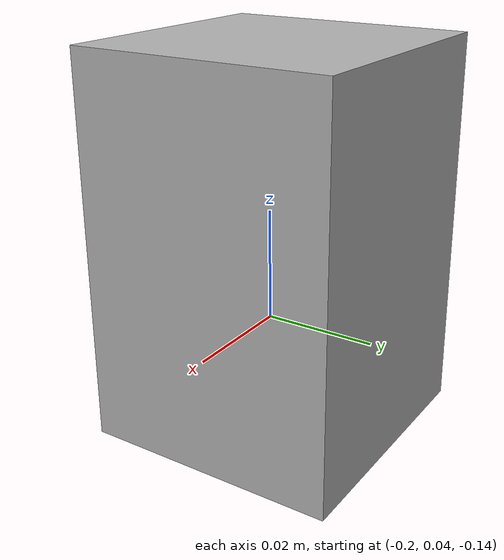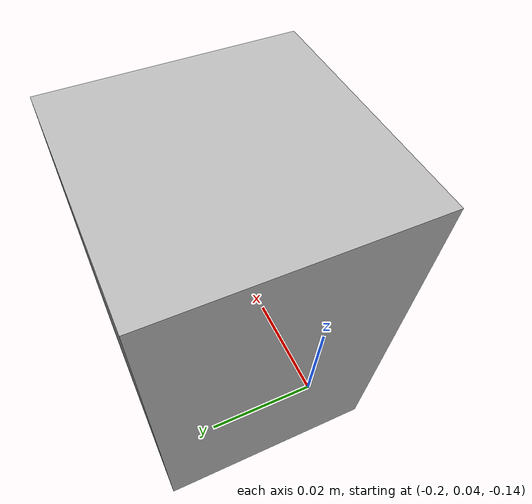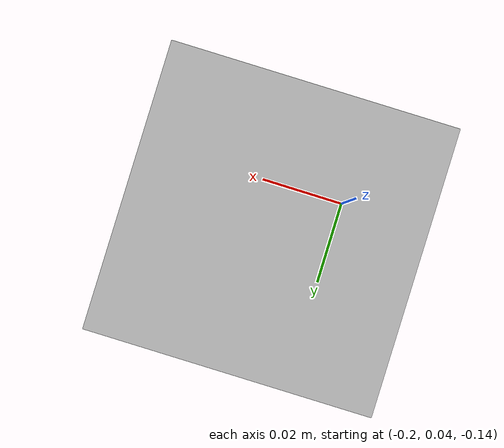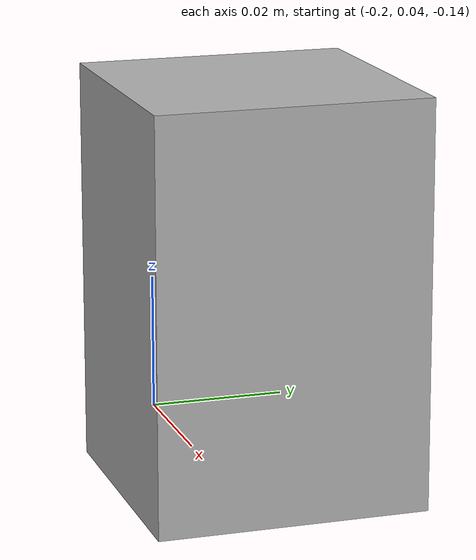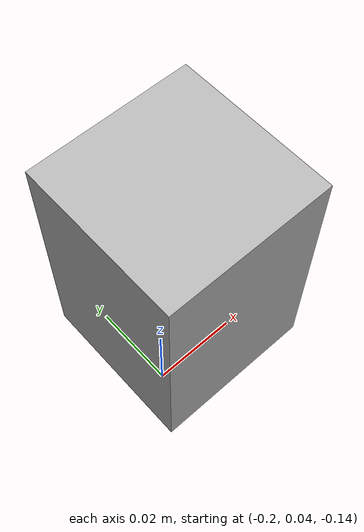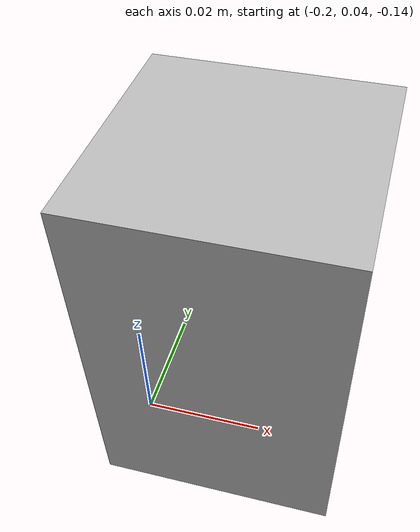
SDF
<sdf version="1.4">
    <world name="default">
      <include>
        <uri>model://sun</uri>
      </include>
      <include>
        <uri>model://ground_plane</uri>
      </include>
      <include>
        <uri>model://model.sdf</uri>
        <name>tylenol</name>
        <pose>0 0 0 0 0 0</pose>
      </include>
      ...
    </world>
  </sdf>

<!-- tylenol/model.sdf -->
<sdf version='1.7'>
  <model name='tylenol'>
    <link name='link'>
      <inertial>
        <mass>1</mass>
        <inertia>
          <ixx>0.166667</ixx>
          <ixy>0</ixy>
          <ixz>0</ixz>
          <iyy>0.166667</iyy>
          <iyz>0</iyz>
          <izz>0.166667</izz>
        </inertia>
        <pose>0 0 0 0 -0 0</pose>
      </inertial>
      <self_collide>0</self_collide>
      <enable_wind>0</enable_wind>
      <kinematic>0</kinematic>
      <pose>-0.185517 0.050838 -0.118228 0 -0 0</pose>
      <gravity>1</gravity>
      <visual name='visual'>
        <geometry>
          <box>
            <size>0.04 0.04 0.06</size>
          </box>
        </geometry>
        <material>
          <script>
            <name>TylenolMaterial</name>
            <uri>file://tylenol/materials/scripts/repeated.material</uri>
          </script>
          <ambient>0.3 0.3 0.3 1</ambient>
          <diffuse>0.7 0.7 0.7 1</diffuse>
          <specular>0.01 0.01 0.01 1</specular>
          <emissive>0 0 0 1</emissive>
        </material>
        <pose>0 0 0 0 -0 0</pose>
        <transparency>0</transparency>
        <cast_shadows>1</cast_shadows>
      </visual>
      <collision name='collision'>
        <laser_retro>0</laser_retro>
        <max_contacts>10</max_contacts>
        <pose>0 0 0 0 -0 0</pose>
        <geometry>
          <box>
            <size>0.04 0.04 0.06</size>
          </box>
        </geometry>
        <surface>
          <friction>
            <ode>
              <mu>1</mu>
              <mu2>1</mu2>
              <fdir1>0 0 0</fdir1>
              <slip1>0</slip1>
              <slip2>0</slip2>
            </ode>
            <torsional>
              <coefficient>1</coefficient>
              <patch_radius>0</patch_radius>
              <surface_radius>0</surface_radius>
              <use_patch_radius>1</use_patch_radius>
              <ode>
                <slip>0</slip>
              </ode>
            </torsional>
          </friction>
          <bounce>
            <restitution_coefficient>0</restitution_coefficient>
            <threshold>1e+06</threshold>
          </bounce>
          <contact>
            <collide_without_contact>0</collide_without_contact>
            <collide_without_contact_bitmask>1</collide_without_contact_bitmask>
            <collide_bitmask>1</collide_bitmask>
            <ode>
              <soft_cfm>0</soft_cfm>
              <soft_erp>0.2</soft_erp>
              <kp>1e+13</kp>
              <kd>1</kd>
              <max_vel>0.01</max_vel>
              <min_depth>0</min_depth>
            </ode>
            <bullet>
              <split_impulse>1</split_impulse>
              <split_impulse_penetration_threshold>-0.01</split_impulse_penetration_threshold>
              <soft_cfm>0</soft_cfm>
              <soft_erp>0.2</soft_erp>
              <kp>1e+13</kp>
              <kd>1</kd>
            </bullet>
          </contact>
        </surface>
      </collision>
    </link>

    <gazebo reference="tylenol">
      <material>TylenolMaterial</material>
    </gazebo>

    <static>0</static>
    <allow_auto_disable>1</allow_auto_disable>
  </model>
</sdf>
